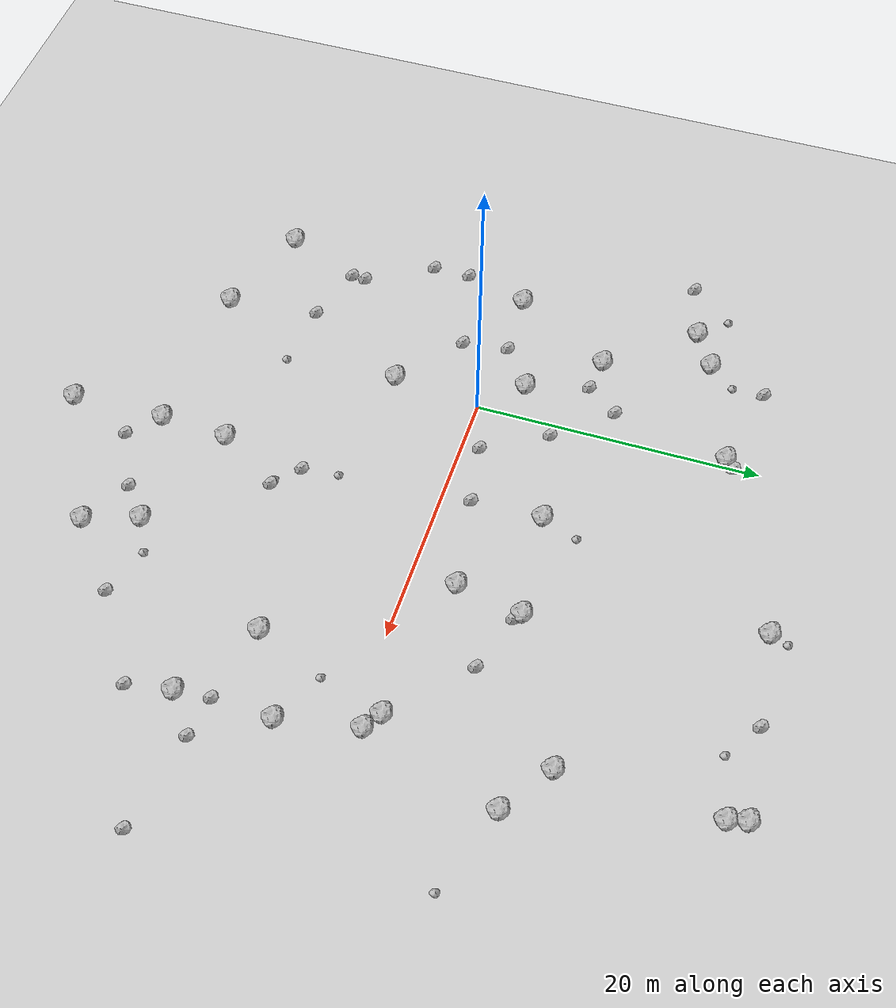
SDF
<sdf version="1.6">
 <world name="default">
  <include><uri>model://custom_ground</uri></include>
  <include><uri>model://sun</uri></include>
  <model name="rock1_0_0">
   <include><uri>model://rock1</uri><pose>15.06968464582139 3.1069251822697908 0.5 0 0 0</pose></include>
  </model>
  <model name="rock1_0_1">
   <include><uri>model://rock1</uri><pose>26.32892054635883 23.26365452338399 0.5 0 0 0</pose></include>
  </model>
  <model name="rock1_0_2">
   <include><uri>model://rock1</uri><pose>7.983359156215723 -27.1600786561009 0.5 0 0 0</pose></include>
  </model>
  <model name="rock1_0_3">
   <include><uri>model://rock1</uri><pose>25.672643220272633 1.5935807476119166 0.5 0 0 0</pose></include>
  </model>
  <model name="rock1_0_4">
   <include><uri>model://rock1</uri><pose>28.013013848218243 -4.664931365607082 0.5 0 0 0</pose></include>
  </model>
  <model name="rock1_0_5">
   <include><uri>model://rock1</uri><pose>28.02385900879345 -11.26747582423194 0.5 0 0 0</pose></include>
  </model>
  <model name="rock1_0_6">
   <include><uri>model://rock1</uri><pose>26.005816526079904 24.532601337274905 0.5 0 0 0</pose></include>
  </model>
  <model name="rock1_0_7">
   <include><uri>model://rock1</uri><pose>-6.37045352057595 7.337928190752066 0.5 0 0 0</pose></include>
  </model>
  <model name="rock1_0_8">
   <include><uri>model://rock1</uri><pose>-10.3943603163264 0.29350451914721276 0.5 0 0 0</pose></include>
  </model>
  <model name="rock1_0_9">
   <include><uri>model://rock1</uri><pose>17.621321891363756 -22.199948382085143 0.5 0 0 0</pose></include>
  </model>
  <model name="rock1_0_10">
   <include><uri>model://rock1</uri><pose>7.8372452794615945 -20.5351775737021 0.5 0 0 0</pose></include>
  </model>
  <model name="rock1_0_11">
   <include><uri>model://rock1</uri><pose>-2.594352621170156 2.6995090786803857 0.5 0 0 0</pose></include>
  </model>
  <model name="rock1_0_12">
   <include><uri>model://rock1</uri><pose>-11.098757009331056 13.17556472998158 0.5 0 0 0</pose></include>
  </model>
  <model name="rock1_0_13">
   <include><uri>model://rock1</uri><pose>-11.236257242341 -17.776768719447084 0.5 0 0 0</pose></include>
  </model>
  <model name="rock1_0_14">
   <include><uri>model://rock1</uri><pose>15.966883605268805 7.77009678907141 0.5 0 0 0</pose></include>
  </model>
  <model name="rock1_0_15">
   <include><uri>model://rock1</uri><pose>29.78158320771758 10.291071700991111 0.5 0 0 0</pose></include>
  </model>
  <model name="rock1_0_16">
   <include><uri>model://rock1</uri><pose>-8.403282053662405 14.72955864081947 0.5 0 0 0</pose></include>
  </model>
  <model name="rock1_0_17">
   <include><uri>model://rock1</uri><pose>-0.5697220292824916 -6.288996863799433 0.5 0 0 0</pose></include>
  </model>
  <model name="rock1_0_18">
   <include><uri>model://rock1</uri><pose>-4.01353723582465 -20.14588242662689 0.5 0 0 0</pose></include>
  </model>
  <model name="rock1_0_19">
   <include><uri>model://rock1</uri><pose>22.232698336327992 -7.802252686375596 0.5 0 0 0</pose></include>
  </model>
  <model name="rock1_0_20">
   <include><uri>model://rock1</uri><pose>-0.4526756948896029 17.535667757737585 0.5 0 0 0</pose></include>
  </model>
  <model name="rock1_0_21">
   <include><uri>model://rock1</uri><pose>26.16755288130956 12.652695046634662 0.5 0 0 0</pose></include>
  </model>
  <model name="rock1_0_22">
   <include><uri>model://rock1</uri><pose>8.179784647774262 6.963246453315016 0.5 0 0 0</pose></include>
  </model>
  <model name="rock1_0_23">
   <include><uri>model://rock1</uri><pose>26.97527326431269 0.7978880900167269 0.5 0 0 0</pose></include>
  </model>
  <model name="rock1_0_24">
   <include><uri>model://rock1</uri><pose>16.336492920499367 -18.506996959010873 0.5 0 0 0</pose></include>
  </model>
  <model name="rock1_0_25">
   <include><uri>model://rock1</uri><pose>12.676892617470315 23.1828652194554 0.5 0 0 0</pose></include>
  </model>
  <model name="rock1_0_26">
   <include><uri>model://rock1</uri><pose>8.12667684182706 -15.721150473818899 0.5 0 0 0</pose></include>
  </model>
  <model name="rock2_0_0">
   <include><uri>model://rock2</uri><pose>9.068843391936372 -9.729949612706843 0.3 0 0 0</pose></include>
  </model>
  <model name="rock2_0_1">
   <include><uri>model://rock2</uri><pose>10.926197278858496 -11.317063429413494 0.3 0 0 0</pose></include>
  </model>
  <model name="rock2_0_2">
   <include><uri>model://rock2</uri><pose>-3.909846682844062 7.052273251123367 0.3 0 0 0</pose></include>
  </model>
  <model name="rock2_0_3">
   <include><uri>model://rock2</uri><pose>16.400988419394963 7.3757420235059925 0.3 0 0 0</pose></include>
  </model>
  <model name="rock2_0_4">
   <include><uri>model://rock2</uri><pose>-2.1978596730394173 9.343247477389568 0.3 0 0 0</pose></include>
  </model>
  <model name="rock2_0_5">
   <include><uri>model://rock2</uri><pose>30.65832658285995 -9.227726097804766 0.3 0 0 0</pose></include>
  </model>
  <model name="rock2_0_6">
   <include><uri>model://rock2</uri><pose>9.847724966495466 -22.422527273738254 0.3 0 0 0</pose></include>
  </model>
  <model name="rock2_0_7">
   <include><uri>model://rock2</uri><pose>-9.117066524378206 -11.441908433232932 0.3 0 0 0</pose></include>
  </model>
  <model name="rock2_0_8">
   <include><uri>model://rock2</uri><pose>8.164742634545568 2.0249007477511114 0.3 0 0 0</pose></include>
  </model>
  <model name="rock2_0_9">
   <include><uri>model://rock2</uri><pose>-11.775848101888936 -6.895070043496283 0.3 0 0 0</pose></include>
  </model>
  <model name="rock2_0_10">
   <include><uri>model://rock2</uri><pose>27.721314657017295 -8.8213216415175 0.3 0 0 0</pose></include>
  </model>
  <model name="rock2_0_11">
   <include><uri>model://rock2</uri><pose>13.980032819147226 -20.37092167081257 0.3 0 0 0</pose></include>
  </model>
  <model name="rock2_0_12">
   <include><uri>model://rock2</uri><pose>0.14109891294870636 18.257476142941393 0.3 0 0 0</pose></include>
  </model>
  <model name="rock2_0_13">
   <include><uri>model://rock2</uri><pose>-6.966795547348587 18.895536410109607 0.3 0 0 0</pose></include>
  </model>
  <model name="rock2_0_14">
   <include><uri>model://rock2</uri><pose>-5.2617861249496745 -2.6735018968843853 0.3 0 0 0</pose></include>
  </model>
  <model name="rock2_0_15">
   <include><uri>model://rock2</uri><pose>37.580900419945245 -10.38479156259639 0.3 0 0 0</pose></include>
  </model>
  <model name="rock2_0_16">
   <include><uri>model://rock2</uri><pose>-15.46605516693436 12.050879172859965 0.3 0 0 0</pose></include>
  </model>
  <model name="rock2_0_17">
   <include><uri>model://rock2</uri><pose>-9.161317775330458 -12.460523859609978 0.3 0 0 0</pose></include>
  </model>
  <model name="rock2_0_18">
   <include><uri>model://rock2</uri><pose>19.375223429768205 24.004391319342545 0.3 0 0 0</pose></include>
  </model>
  <model name="rock2_0_19">
   <include><uri>model://rock2</uri><pose>3.670279032440259 1.2601996631674623 0.3 0 0 0</pose></include>
  </model>
  <model name="rock2_0_20">
   <include><uri>model://rock2</uri><pose>-5.698757492746804 0.5522267589725658 0.3 0 0 0</pose></include>
  </model>
  <model name="rock2_0_21">
   <include><uri>model://rock2</uri><pose>22.323444071755233 -18.337581968906026 0.3 0 0 0</pose></include>
  </model>
  <model name="rock2_0_22">
   <include><uri>model://rock2</uri><pose>1.0941339520509388 5.582283498468868 0.3 0 0 0</pose></include>
  </model>
  <model name="rock2_0_23">
   <include><uri>model://rock2</uri><pose>-4.805972382700993 -13.72369765079037 0.3 0 0 0</pose></include>
  </model>
  <model name="rock2_0_24">
   <include><uri>model://rock2</uri><pose>28.450826261389288 -14.367121642334276 0.3 0 0 0</pose></include>
  </model>
  <model name="rock2_0_25">
   <include><uri>model://rock2</uri><pose>-11.766900031351742 -4.207889690075163 0.3 0 0 0</pose></include>
  </model>
  <model name="rock2_0_26">
   <include><uri>model://rock2</uri><pose>20.579176238337084 6.140432063777112 0.3 0 0 0</pose></include>
  </model>
  <model name="rock3_0_0">
   <include><uri>model://rock3</uri><pose>35.8432713329381 8.271224612250151 0.2 0 0 0</pose></include>
  </model>
  <model name="rock3_0_1">
   <include><uri>model://rock3</uri><pose>12.980148217668763 24.447101420860207 0.2 0 0 0</pose></include>
  </model>
  <model name="rock3_0_2">
   <include><uri>model://rock3</uri><pose>-6.940709831143604 16.642500932529288 0.2 0 0 0</pose></include>
  </model>
  <model name="rock3_0_3">
   <include><uri>model://rock3</uri><pose>24.24270426994967 -2.9096783958652637 0.2 0 0 0</pose></include>
  </model>
  <model name="rock3_0_4">
   <include><uri>model://rock3</uri><pose>8.789379792919402 -7.213222431549983 0.2 0 0 0</pose></include>
  </model>
  <model name="rock3_0_5">
   <include><uri>model://rock3</uri><pose>21.95940574739491 22.30661858556647 0.2 0 0 0</pose></include>
  </model>
  <model name="rock3_0_6">
   <include><uri>model://rock3</uri><pose>10.47258669833974 -11.234725296211884 0.2 0 0 0</pose></include>
  </model>
  <model name="rock3_0_7">
   <include><uri>model://rock3</uri><pose>0.0011203497933856 -14.265905756262047 0.2 0 0 0</pose></include>
  </model>
  <model name="rock3_0_8">
   <include><uri>model://rock3</uri><pose>18.76656182074275 -17.276447351055054 0.2 0 0 0</pose></include>
  </model>
  <model name="rock3_0_9">
   <include><uri>model://rock3</uri><pose>-13.04867573133087 15.065222599086518 0.2 0 0 0</pose></include>
  </model>
  <model name="rock3_0_10">
   <include><uri>model://rock3</uri><pose>9.063635578710517 9.557597105215912 0.2 0 0 0</pose></include>
  </model>
 </world>
</sdf>
